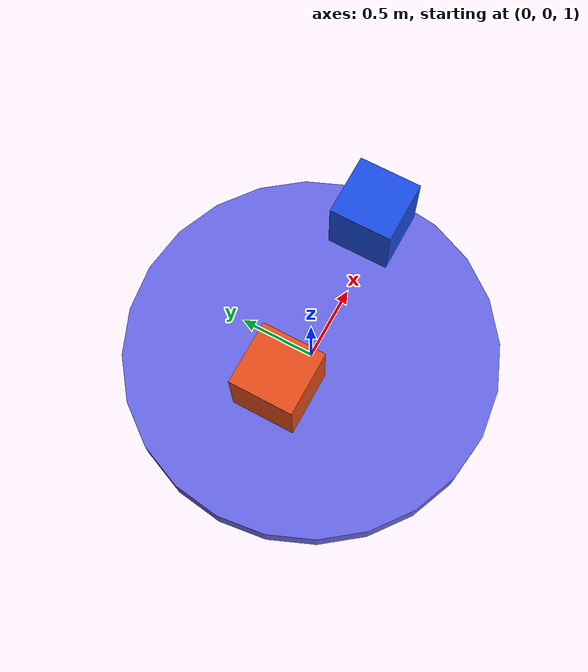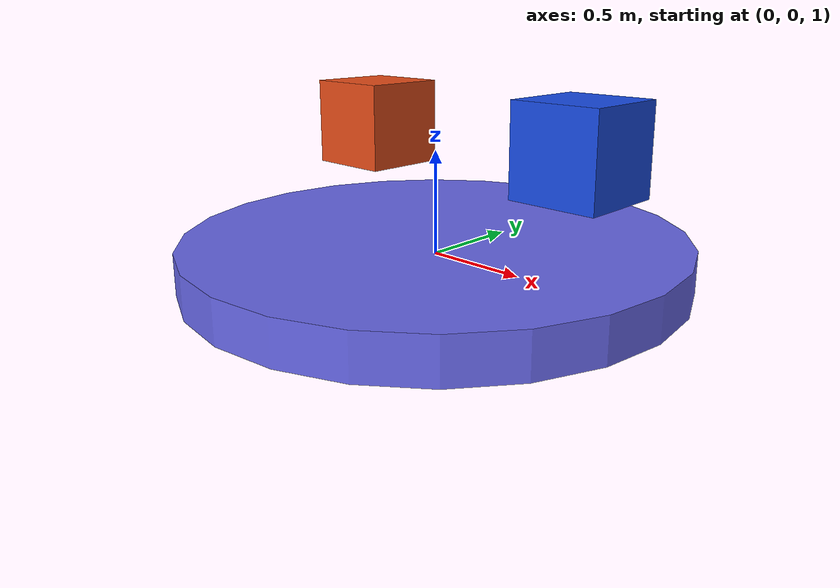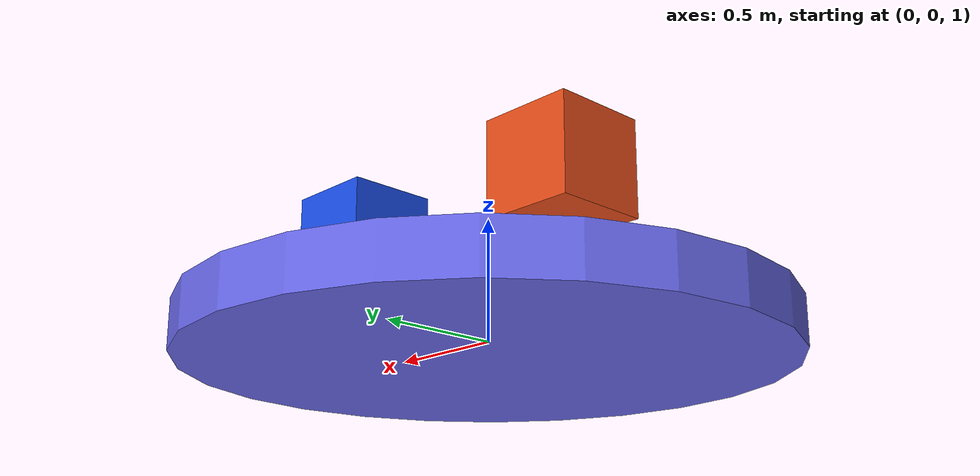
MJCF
<mujoco>
  <option gravity="0 0 -9.81"/>
  <worldbody>
    <body name="platform" pos="0 0 1">
      <geom type="cylinder" size="1.2 0.1" rgba="0.4 0.4 0.9 1" friction="0.5 0.5 0.5"/>
    </body>
    <body name="weight1" pos="-0.4 0 1.6">
      <geom type="box" size="0.2 0.2 0.2" density="1200" rgba="0.9 0.3 0.1 1"/>
      <joint name="w1_joint" type="free"/>
    </body>
    <body name="weight2" pos="0.8 0 1.6">
      <geom type="box" size="0.2 0.2 0.2" density="600" rgba="0.1 0.3 0.9 1"/>
      <joint name="w2_joint" type="free"/>
    </body>
  </worldbody>
</mujoco>
